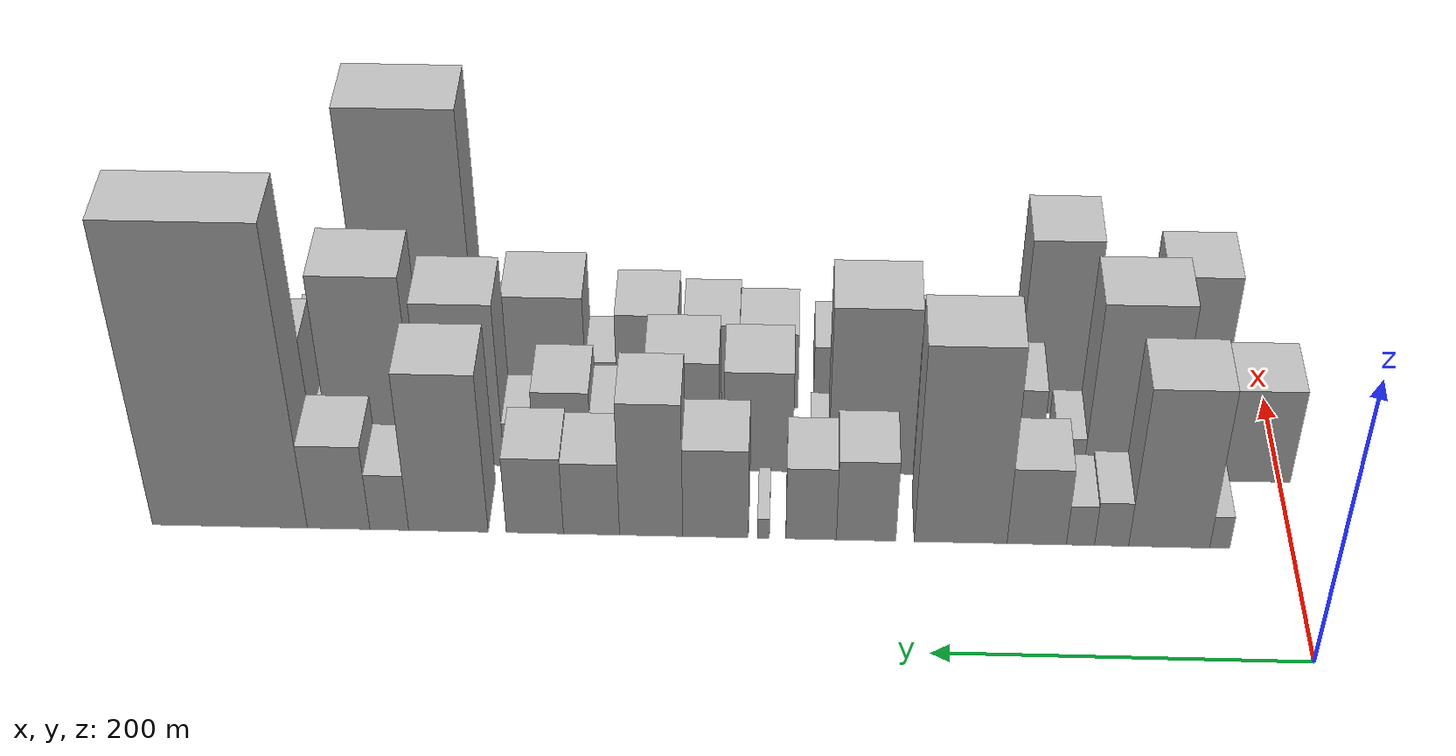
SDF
<sdf version="1.6">
 <world name="default">
  <model name="building_19">
   <static>1</static>
   <pose>100.0000 39.5540 0 0.000000 0.000000 0.000000</pose>
   <link name="link">
    <pose>0 0 12.00 0 0 0</pose>
    <collision name="collision"><geometry><box><size>40.0000 10.8943 24.0000</size></box></geometry></collision>
    <visual name="visual">
     <cast_shadows>0</cast_shadows>
     <geometry><box><size>40.0000 10.8943 24.0000</size></box></geometry>
     <material>
      <script>
       <uri>model://HANNAS_wall/materials/scripts</uri>
       <uri>model://HANNAS_wall/materials/textures</uri>
       <name>vrc/HANNAS_wall</name>
      </script>
     </material>
    </visual>
   </link>
  </model>
  <model name="building_20">
   <static>1</static>
   <pose>100.0000 67.0871 0 0.000000 0.000000 0.000000</pose>
   <link name="link">
    <pose>0 0 58.50 0 0 0</pose>
    <collision name="collision"><geometry><box><size>40.0000 44.1720 117.0000</size></box></geometry></collision>
    <visual name="visual">
     <cast_shadows>0</cast_shadows>
     <geometry><box><size>40.0000 44.1720 117.0000</size></box></geometry>
     <material>
      <script>
       <uri>model://HANNAS_wall/materials/scripts</uri>
       <uri>model://HANNAS_wall/materials/textures</uri>
       <name>vrc/HANNAS_wall</name>
      </script>
     </material>
    </visual>
   </link>
  </model>
  <model name="building_21">
   <static>1</static>
   <pose>100.0000 98.4633 0 0.000000 0.000000 0.000000</pose>
   <link name="link">
    <pose>0 0 16.50 0 0 0</pose>
    <collision name="collision"><geometry><box><size>40.0000 18.5803 33.0000</size></box></geometry></collision>
    <visual name="visual">
     <cast_shadows>0</cast_shadows>
     <geometry><box><size>40.0000 18.5803 33.0000</size></box></geometry>
     <material>
      <script>
       <uri>model://HANNAS_wall/materials/scripts</uri>
       <uri>model://HANNAS_wall/materials/textures</uri>
       <name>vrc/HANNAS_wall</name>
      </script>
     </material>
    </visual>
   </link>
  </model>
  <model name="building_22">
   <static>1</static>
   <pose>100.0000 115.4284 0 0.000000 0.000000 0.000000</pose>
   <link name="link">
    <pose>0 0 15.00 0 0 0</pose>
    <collision name="collision"><geometry><box><size>40.0000 15.3501 30.0000</size></box></geometry></collision>
    <visual name="visual">
     <cast_shadows>0</cast_shadows>
     <geometry><box><size>40.0000 15.3501 30.0000</size></box></geometry>
     <material>
      <script>
       <uri>model://HANNAS_wall/materials/scripts</uri>
       <uri>model://HANNAS_wall/materials/textures</uri>
       <name>vrc/HANNAS_wall</name>
      </script>
     </material>
    </visual>
   </link>
  </model>
  <model name="building_23">
   <static>1</static>
   <pose>100.0000 139.3123 0 0.000000 0.000000 0.000000</pose>
   <link name="link">
    <pose>0 0 28.50 0 0 0</pose>
    <collision name="collision"><geometry><box><size>40.0000 32.4177 57.0000</size></box></geometry></collision>
    <visual name="visual">
     <cast_shadows>0</cast_shadows>
     <geometry><box><size>40.0000 32.4177 57.0000</size></box></geometry>
     <material>
      <script>
       <uri>model://HANNAS_wall/materials/scripts</uri>
       <uri>model://HANNAS_wall/materials/textures</uri>
       <name>vrc/HANNAS_wall</name>
      </script>
     </material>
    </visual>
   </link>
  </model>
  <model name="building_24">
   <static>1</static>
   <pose>100.0000 180.9041 0 0.000000 0.000000 0.000000</pose>
   <link name="link">
    <pose>0 0 72.00 0 0 0</pose>
    <collision name="collision"><geometry><box><size>40.0000 50.7659 144.0000</size></box></geometry></collision>
    <visual name="visual">
     <cast_shadows>0</cast_shadows>
     <geometry><box><size>40.0000 50.7659 144.0000</size></box></geometry>
     <material>
      <script>
       <uri>model://HANNAS_wall/materials/scripts</uri>
       <uri>model://HANNAS_wall/materials/textures</uri>
       <name>vrc/HANNAS_wall</name>
      </script>
     </material>
    </visual>
   </link>
  </model>
  <model name="building_25">
   <static>1</static>
   <pose>100.0000 232.5861 0 0.000000 0.000000 0.000000</pose>
   <link name="link">
    <pose>0 0 30.00 0 0 0</pose>
    <collision name="collision"><geometry><box><size>40.0000 32.5981 60.0000</size></box></geometry></collision>
    <visual name="visual">
     <cast_shadows>0</cast_shadows>
     <geometry><box><size>40.0000 32.5981 60.0000</size></box></geometry>
     <material>
      <script>
       <uri>model://HANNAS_wall/materials/scripts</uri>
       <uri>model://HANNAS_wall/materials/textures</uri>
       <name>vrc/HANNAS_wall</name>
      </script>
     </material>
    </visual>
   </link>
  </model>
  <model name="building_26">
   <static>1</static>
   <pose>100.0000 262.7361 0 0.000000 0.000000 0.000000</pose>
   <link name="link">
    <pose>0 0 27.00 0 0 0</pose>
    <collision name="collision"><geometry><box><size>40.0000 27.7021 54.0000</size></box></geometry></collision>
    <visual name="visual">
     <cast_shadows>0</cast_shadows>
     <geometry><box><size>40.0000 27.7021 54.0000</size></box></geometry>
     <material>
      <script>
       <uri>model://HANNAS_wall/materials/scripts</uri>
       <uri>model://HANNAS_wall/materials/textures</uri>
       <name>vrc/HANNAS_wall</name>
      </script>
     </material>
    </visual>
   </link>
  </model>
  <model name="building_27">
   <static>1</static>
   <pose>100.0000 288.8583 0 0.000000 0.000000 0.000000</pose>
   <link name="link">
    <pose>0 0 7.50 0 0 0</pose>
    <collision name="collision"><geometry><box><size>40.0000 6.5422 15.0000</size></box></geometry></collision>
    <visual name="visual">
     <cast_shadows>0</cast_shadows>
     <geometry><box><size>40.0000 6.5422 15.0000</size></box></geometry>
     <material>
      <script>
       <uri>model://HANNAS_wall/materials/scripts</uri>
       <uri>model://HANNAS_wall/materials/textures</uri>
       <name>vrc/HANNAS_wall</name>
      </script>
     </material>
    </visual>
   </link>
  </model>
  <model name="building_28">
   <static>1</static>
   <pose>100.0000 315.1019 0 0.000000 0.000000 0.000000</pose>
   <link name="link">
    <pose>0 0 33.00 0 0 0</pose>
    <collision name="collision"><geometry><box><size>40.0000 35.9450 66.0000</size></box></geometry></collision>
    <visual name="visual">
     <cast_shadows>0</cast_shadows>
     <geometry><box><size>40.0000 35.9450 66.0000</size></box></geometry>
     <material>
      <script>
       <uri>model://HANNAS_wall/materials/scripts</uri>
       <uri>model://HANNAS_wall/materials/textures</uri>
       <name>vrc/HANNAS_wall</name>
      </script>
     </material>
    </visual>
   </link>
  </model>
  <model name="building_29">
   <static>1</static>
   <pose>100.0000 350.4758 0 0.000000 0.000000 0.000000</pose>
   <link name="link">
    <pose>0 0 49.50 0 0 0</pose>
    <collision name="collision"><geometry><box><size>40.0000 34.8028 99.0000</size></box></geometry></collision>
    <visual name="visual">
     <cast_shadows>0</cast_shadows>
     <geometry><box><size>40.0000 34.8028 99.0000</size></box></geometry>
     <material>
      <script>
       <uri>model://HANNAS_wall/materials/scripts</uri>
       <uri>model://HANNAS_wall/materials/textures</uri>
       <name>vrc/HANNAS_wall</name>
      </script>
     </material>
    </visual>
   </link>
  </model>
  <model name="building_30">
   <static>1</static>
   <pose>100.0000 383.3296 0 0.000000 0.000000 0.000000</pose>
   <link name="link">
    <pose>0 0 27.00 0 0 0</pose>
    <collision name="collision"><geometry><box><size>40.0000 30.9048 54.0000</size></box></geometry></collision>
    <visual name="visual">
     <cast_shadows>0</cast_shadows>
     <geometry><box><size>40.0000 30.9048 54.0000</size></box></geometry>
     <material>
      <script>
       <uri>model://HANNAS_wall/materials/scripts</uri>
       <uri>model://HANNAS_wall/materials/textures</uri>
       <name>vrc/HANNAS_wall</name>
      </script>
     </material>
    </visual>
   </link>
  </model>
  <model name="building_31">
   <static>1</static>
   <pose>100.0000 414.5140 0 0.000000 0.000000 0.000000</pose>
   <link name="link">
    <pose>0 0 28.50 0 0 0</pose>
    <collision name="collision"><geometry><box><size>40.0000 31.4638 57.0000</size></box></geometry></collision>
    <visual name="visual">
     <cast_shadows>0</cast_shadows>
     <geometry><box><size>40.0000 31.4638 57.0000</size></box></geometry>
     <material>
      <script>
       <uri>model://HANNAS_wall/materials/scripts</uri>
       <uri>model://HANNAS_wall/materials/textures</uri>
       <name>vrc/HANNAS_wall</name>
      </script>
     </material>
    </visual>
   </link>
  </model>
  <model name="building_32">
   <static>1</static>
   <pose>100.0000 462.1769 0 0.000000 0.000000 0.000000</pose>
   <link name="link">
    <pose>0 0 58.50 0 0 0</pose>
    <collision name="collision"><geometry><box><size>40.0000 43.8621 117.0000</size></box></geometry></collision>
    <visual name="visual">
     <cast_shadows>0</cast_shadows>
     <geometry><box><size>40.0000 43.8621 117.0000</size></box></geometry>
     <material>
      <script>
       <uri>model://HANNAS_wall/materials/scripts</uri>
       <uri>model://HANNAS_wall/materials/textures</uri>
       <name>vrc/HANNAS_wall</name>
      </script>
     </material>
    </visual>
   </link>
  </model>
  <model name="building_33">
   <static>1</static>
   <pose>100.0000 494.8124 0 0.000000 0.000000 0.000000</pose>
   <link name="link">
    <pose>0 0 21.00 0 0 0</pose>
    <collision name="collision"><geometry><box><size>40.0000 21.4090 42.0000</size></box></geometry></collision>
    <visual name="visual">
     <cast_shadows>0</cast_shadows>
     <geometry><box><size>40.0000 21.4090 42.0000</size></box></geometry>
     <material>
      <script>
       <uri>model://HANNAS_wall/materials/scripts</uri>
       <uri>model://HANNAS_wall/materials/textures</uri>
       <name>vrc/HANNAS_wall</name>
      </script>
     </material>
    </visual>
   </link>
  </model>
  <model name="building_34">
   <static>1</static>
   <pose>100.0000 522.8104 0 0.000000 0.000000 0.000000</pose>
   <link name="link">
    <pose>0 0 31.50 0 0 0</pose>
    <collision name="collision"><geometry><box><size>40.0000 34.5869 63.0000</size></box></geometry></collision>
    <visual name="visual">
     <cast_shadows>0</cast_shadows>
     <geometry><box><size>40.0000 34.5869 63.0000</size></box></geometry>
     <material>
      <script>
       <uri>model://HANNAS_wall/materials/scripts</uri>
       <uri>model://HANNAS_wall/materials/textures</uri>
       <name>vrc/HANNAS_wall</name>
      </script>
     </material>
    </visual>
   </link>
  </model>
  <model name="building_35">
   <static>1</static>
   <pose>100.0000 582.9870 0 0.000000 0.000000 0.000000</pose>
   <link name="link">
    <pose>0 0 108.00 0 0 0</pose>
    <collision name="collision"><geometry><box><size>40.0000 85.7662 216.0000</size></box></geometry></collision>
    <visual name="visual">
     <cast_shadows>0</cast_shadows>
     <geometry><box><size>40.0000 85.7662 216.0000</size></box></geometry>
     <material>
      <script>
       <uri>model://HANNAS_wall/materials/scripts</uri>
       <uri>model://HANNAS_wall/materials/textures</uri>
       <name>vrc/HANNAS_wall</name>
      </script>
     </material>
    </visual>
   </link>
  </model>
  <model name="building_52">
   <static>1</static>
   <pose>152.0000 14.0588 0 0.000000 0.000000 0.000000</pose>
   <link name="link">
    <pose>0 0 34.50 0 0 0</pose>
    <collision name="collision"><geometry><box><size>40.0000 40.2531 69.0000</size></box></geometry></collision>
    <visual name="visual">
     <cast_shadows>0</cast_shadows>
     <geometry><box><size>40.0000 40.2531 69.0000</size></box></geometry>
     <material>
      <script>
       <uri>model://HANNAS_wall/materials/scripts</uri>
       <uri>model://HANNAS_wall/materials/textures</uri>
       <name>vrc/HANNAS_wall</name>
      </script>
     </material>
    </visual>
   </link>
  </model>
  <model name="building_53">
   <static>1</static>
   <pose>152.0000 51.0112 0 0.000000 0.000000 0.000000</pose>
   <link name="link">
    <pose>0 0 18.00 0 0 0</pose>
    <collision name="collision"><geometry><box><size>40.0000 19.6517 36.0000</size></box></geometry></collision>
    <visual name="visual">
     <cast_shadows>0</cast_shadows>
     <geometry><box><size>40.0000 19.6517 36.0000</size></box></geometry>
     <material>
      <script>
       <uri>model://HANNAS_wall/materials/scripts</uri>
       <uri>model://HANNAS_wall/materials/textures</uri>
       <name>vrc/HANNAS_wall</name>
      </script>
     </material>
    </visual>
   </link>
  </model>
  <model name="building_54">
   <static>1</static>
   <pose>152.0000 85.5812 0 0.000000 0.000000 0.000000</pose>
   <link name="link">
    <pose>0 0 64.50 0 0 0</pose>
    <collision name="collision"><geometry><box><size>40.0000 49.4884 129.0000</size></box></geometry></collision>
    <visual name="visual">
     <cast_shadows>0</cast_shadows>
     <geometry><box><size>40.0000 49.4884 129.0000</size></box></geometry>
     <material>
      <script>
       <uri>model://HANNAS_wall/materials/scripts</uri>
       <uri>model://HANNAS_wall/materials/textures</uri>
       <name>vrc/HANNAS_wall</name>
      </script>
     </material>
    </visual>
   </link>
  </model>
  <model name="building_55">
   <static>1</static>
   <pose>152.0000 118.5009 0 0.000000 0.000000 0.000000</pose>
   <link name="link">
    <pose>0 0 15.00 0 0 0</pose>
    <collision name="collision"><geometry><box><size>40.0000 16.3510 30.0000</size></box></geometry></collision>
    <visual name="visual">
     <cast_shadows>0</cast_shadows>
     <geometry><box><size>40.0000 16.3510 30.0000</size></box></geometry>
     <material>
      <script>
       <uri>model://HANNAS_wall/materials/scripts</uri>
       <uri>model://HANNAS_wall/materials/textures</uri>
       <name>vrc/HANNAS_wall</name>
      </script>
     </material>
    </visual>
   </link>
  </model>
  <model name="building_56">
   <static>1</static>
   <pose>152.0000 153.3070 0 0.000000 0.000000 0.000000</pose>
   <link name="link">
    <pose>0 0 33.00 0 0 0</pose>
    <collision name="collision"><geometry><box><size>40.0000 37.2611 66.0000</size></box></geometry></collision>
    <visual name="visual">
     <cast_shadows>0</cast_shadows>
     <geometry><box><size>40.0000 37.2611 66.0000</size></box></geometry>
     <material>
      <script>
       <uri>model://HANNAS_wall/materials/scripts</uri>
       <uri>model://HANNAS_wall/materials/textures</uri>
       <name>vrc/HANNAS_wall</name>
      </script>
     </material>
    </visual>
   </link>
  </model>
  <model name="building_57">
   <static>1</static>
   <pose>152.0000 188.7790 0 0.000000 0.000000 0.000000</pose>
   <link name="link">
    <pose>0 0 49.50 0 0 0</pose>
    <collision name="collision"><geometry><box><size>40.0000 33.6830 99.0000</size></box></geometry></collision>
    <visual name="visual">
     <cast_shadows>0</cast_shadows>
     <geometry><box><size>40.0000 33.6830 99.0000</size></box></geometry>
     <material>
      <script>
       <uri>model://HANNAS_wall/materials/scripts</uri>
       <uri>model://HANNAS_wall/materials/textures</uri>
       <name>vrc/HANNAS_wall</name>
      </script>
     </material>
    </visual>
   </link>
  </model>
  <model name="building_58">
   <static>1</static>
   <pose>152.0000 229.4801 0 0.000000 0.000000 0.000000</pose>
   <link name="link">
    <pose>0 0 61.50 0 0 0</pose>
    <collision name="collision"><geometry><box><size>40.0000 47.7192 123.0000</size></box></geometry></collision>
    <visual name="visual">
     <cast_shadows>0</cast_shadows>
     <geometry><box><size>40.0000 47.7192 123.0000</size></box></geometry>
     <material>
      <script>
       <uri>model://HANNAS_wall/materials/scripts</uri>
       <uri>model://HANNAS_wall/materials/textures</uri>
       <name>vrc/HANNAS_wall</name>
      </script>
     </material>
    </visual>
   </link>
  </model>
  <model name="building_59">
   <static>1</static>
   <pose>152.0000 258.4215 0 0.000000 0.000000 0.000000</pose>
   <link name="link">
    <pose>0 0 12.00 0 0 0</pose>
    <collision name="collision"><geometry><box><size>40.0000 10.1636 24.0000</size></box></geometry></collision>
    <visual name="visual">
     <cast_shadows>0</cast_shadows>
     <geometry><box><size>40.0000 10.1636 24.0000</size></box></geometry>
     <material>
      <script>
       <uri>model://HANNAS_wall/materials/scripts</uri>
       <uri>model://HANNAS_wall/materials/textures</uri>
       <name>vrc/HANNAS_wall</name>
      </script>
     </material>
    </visual>
   </link>
  </model>
  <model name="building_60">
   <static>1</static>
   <pose>152.0000 292.6820 0 0.000000 0.000000 0.000000</pose>
   <link name="link">
    <pose>0 0 37.50 0 0 0</pose>
    <collision name="collision"><geometry><box><size>40.0000 38.3574 75.0000</size></box></geometry></collision>
    <visual name="visual">
     <cast_shadows>0</cast_shadows>
     <geometry><box><size>40.0000 38.3574 75.0000</size></box></geometry>
     <material>
      <script>
       <uri>model://HANNAS_wall/materials/scripts</uri>
       <uri>model://HANNAS_wall/materials/textures</uri>
       <name>vrc/HANNAS_wall</name>
      </script>
     </material>
    </visual>
   </link>
  </model>
  <model name="building_61">
   <static>1</static>
   <pose>152.0000 335.2632 0 0.000000 0.000000 0.000000</pose>
   <link name="link">
    <pose>0 0 40.50 0 0 0</pose>
    <collision name="collision"><geometry><box><size>40.0000 40.8051 81.0000</size></box></geometry></collision>
    <visual name="visual">
     <cast_shadows>0</cast_shadows>
     <geometry><box><size>40.0000 40.8051 81.0000</size></box></geometry>
     <material>
      <script>
       <uri>model://HANNAS_wall/materials/scripts</uri>
       <uri>model://HANNAS_wall/materials/textures</uri>
       <name>vrc/HANNAS_wall</name>
      </script>
     </material>
    </visual>
   </link>
  </model>
  <model name="building_62">
   <static>1</static>
   <pose>152.0000 359.3220 0 0.000000 0.000000 0.000000</pose>
   <link name="link">
    <pose>0 0 7.50 0 0 0</pose>
    <collision name="collision"><geometry><box><size>40.0000 7.3123 15.0000</size></box></geometry></collision>
    <visual name="visual">
     <cast_shadows>0</cast_shadows>
     <geometry><box><size>40.0000 7.3123 15.0000</size></box></geometry>
     <material>
      <script>
       <uri>model://HANNAS_wall/materials/scripts</uri>
       <uri>model://HANNAS_wall/materials/textures</uri>
       <name>vrc/HANNAS_wall</name>
      </script>
     </material>
    </visual>
   </link>
  </model>
  <model name="building_63">
   <static>1</static>
   <pose>152.0000 374.9306 0 0.000000 0.000000 0.000000</pose>
   <link name="link">
    <pose>0 0 21.00 0 0 0</pose>
    <collision name="collision"><geometry><box><size>40.0000 23.9050 42.0000</size></box></geometry></collision>
    <visual name="visual">
     <cast_shadows>0</cast_shadows>
     <geometry><box><size>40.0000 23.9050 42.0000</size></box></geometry>
     <material>
      <script>
       <uri>model://HANNAS_wall/materials/scripts</uri>
       <uri>model://HANNAS_wall/materials/textures</uri>
       <name>vrc/HANNAS_wall</name>
      </script>
     </material>
    </visual>
   </link>
  </model>
  <model name="building_64">
   <static>1</static>
   <pose>152.0000 402.9809 0 0.000000 0.000000 0.000000</pose>
   <link name="link">
    <pose>0 0 28.50 0 0 0</pose>
    <collision name="collision"><geometry><box><size>40.0000 32.1955 57.0000</size></box></geometry></collision>
    <visual name="visual">
     <cast_shadows>0</cast_shadows>
     <geometry><box><size>40.0000 32.1955 57.0000</size></box></geometry>
     <material>
      <script>
       <uri>model://HANNAS_wall/materials/scripts</uri>
       <uri>model://HANNAS_wall/materials/textures</uri>
       <name>vrc/HANNAS_wall</name>
      </script>
     </material>
    </visual>
   </link>
  </model>
  <model name="building_65">
   <static>1</static>
   <pose>152.0000 427.7514 0 0.000000 0.000000 0.000000</pose>
   <link name="link">
    <pose>0 0 16.50 0 0 0</pose>
    <collision name="collision"><geometry><box><size>40.0000 17.3454 33.0000</size></box></geometry></collision>
    <visual name="visual">
     <cast_shadows>0</cast_shadows>
     <geometry><box><size>40.0000 17.3454 33.0000</size></box></geometry>
     <material>
      <script>
       <uri>model://HANNAS_wall/materials/scripts</uri>
       <uri>model://HANNAS_wall/materials/textures</uri>
       <name>vrc/HANNAS_wall</name>
      </script>
     </material>
    </visual>
   </link>
  </model>
  <model name="building_66">
   <static>1</static>
   <pose>152.0000 458.7340 0 0.000000 0.000000 0.000000</pose>
   <link name="link">
    <pose>0 0 60.00 0 0 0</pose>
    <collision name="collision"><geometry><box><size>40.0000 44.6198 120.0000</size></box></geometry></collision>
    <visual name="visual">
     <cast_shadows>0</cast_shadows>
     <geometry><box><size>40.0000 44.6198 120.0000</size></box></geometry>
     <material>
      <script>
       <uri>model://HANNAS_wall/materials/scripts</uri>
       <uri>model://HANNAS_wall/materials/textures</uri>
       <name>vrc/HANNAS_wall</name>
      </script>
     </material>
    </visual>
   </link>
  </model>
  <model name="building_67">
   <static>1</static>
   <pose>152.0000 509.8177 0 0.000000 0.000000 0.000000</pose>
   <link name="link">
    <pose>0 0 69.00 0 0 0</pose>
    <collision name="collision"><geometry><box><size>40.0000 49.5475 138.0000</size></box></geometry></collision>
    <visual name="visual">
     <cast_shadows>0</cast_shadows>
     <geometry><box><size>40.0000 49.5475 138.0000</size></box></geometry>
     <material>
      <script>
       <uri>model://HANNAS_wall/materials/scripts</uri>
       <uri>model://HANNAS_wall/materials/textures</uri>
       <name>vrc/HANNAS_wall</name>
      </script>
     </material>
    </visual>
   </link>
  </model>
  <model name="building_68">
   <static>1</static>
   <pose>152.0000 539.7124 0 0.000000 0.000000 0.000000</pose>
   <link name="link">
    <pose>0 0 12.00 0 0 0</pose>
    <collision name="collision"><geometry><box><size>40.0000 10.2420 24.0000</size></box></geometry></collision>
    <visual name="visual">
     <cast_shadows>0</cast_shadows>
     <geometry><box><size>40.0000 10.2420 24.0000</size></box></geometry>
     <material>
      <script>
       <uri>model://HANNAS_wall/materials/scripts</uri>
       <uri>model://HANNAS_wall/materials/textures</uri>
       <name>vrc/HANNAS_wall</name>
      </script>
     </material>
    </visual>
   </link>
  </model>
  <model name="building_69">
   <static>1</static>
   <pose>152.0000 568.9970 0 0.000000 0.000000 0.000000</pose>
   <link name="link">
    <pose>0 0 43.50 0 0 0</pose>
    <collision name="collision"><geometry><box><size>40.0000 48.3274 87.0000</size></box></geometry></collision>
    <visual name="visual">
     <cast_shadows>0</cast_shadows>
     <geometry><box><size>40.0000 48.3274 87.0000</size></box></geometry>
     <material>
      <script>
       <uri>model://HANNAS_wall/materials/scripts</uri>
       <uri>model://HANNAS_wall/materials/textures</uri>
       <name>vrc/HANNAS_wall</name>
      </script>
     </material>
    </visual>
   </link>
  </model>
  <model name="building_86">
   <static>1</static>
   <pose>204.0000 47.8204 0 0.000000 0.000000 0.000000</pose>
   <link name="link">
    <pose>0 0 52.50 0 0 0</pose>
    <collision name="collision"><geometry><box><size>40.0000 41.2436 105.0000</size></box></geometry></collision>
    <visual name="visual">
     <cast_shadows>0</cast_shadows>
     <geometry><box><size>40.0000 41.2436 105.0000</size></box></geometry>
     <material>
      <script>
       <uri>model://HANNAS_wall/materials/scripts</uri>
       <uri>model://HANNAS_wall/materials/textures</uri>
       <name>vrc/HANNAS_wall</name>
      </script>
     </material>
    </visual>
   </link>
  </model>
  <model name="building_87">
   <static>1</static>
   <pose>204.0000 83.9862 0 0.000000 0.000000 0.000000</pose>
   <link name="link">
    <pose>0 0 30.00 0 0 0</pose>
    <collision name="collision"><geometry><box><size>40.0000 31.0881 60.0000</size></box></geometry></collision>
    <visual name="visual">
     <cast_shadows>0</cast_shadows>
     <geometry><box><size>40.0000 31.0881 60.0000</size></box></geometry>
     <material>
      <script>
       <uri>model://HANNAS_wall/materials/scripts</uri>
       <uri>model://HANNAS_wall/materials/textures</uri>
       <name>vrc/HANNAS_wall</name>
      </script>
     </material>
    </visual>
   </link>
  </model>
  <model name="building_88">
   <static>1</static>
   <pose>204.0000 125.2465 0 0.000000 0.000000 0.000000</pose>
   <link name="link">
    <pose>0 0 64.50 0 0 0</pose>
    <collision name="collision"><geometry><box><size>40.0000 39.4324 129.0000</size></box></geometry></collision>
    <visual name="visual">
     <cast_shadows>0</cast_shadows>
     <geometry><box><size>40.0000 39.4324 129.0000</size></box></geometry>
     <material>
      <script>
       <uri>model://HANNAS_wall/materials/scripts</uri>
       <uri>model://HANNAS_wall/materials/textures</uri>
       <name>vrc/HANNAS_wall</name>
      </script>
     </material>
    </visual>
   </link>
  </model>
  <model name="building_89">
   <static>1</static>
   <pose>204.0000 156.4666 0 0.000000 0.000000 0.000000</pose>
   <link name="link">
    <pose>0 0 21.00 0 0 0</pose>
    <collision name="collision"><geometry><box><size>40.0000 23.0079 42.0000</size></box></geometry></collision>
    <visual name="visual">
     <cast_shadows>0</cast_shadows>
     <geometry><box><size>40.0000 23.0079 42.0000</size></box></geometry>
     <material>
      <script>
       <uri>model://HANNAS_wall/materials/scripts</uri>
       <uri>model://HANNAS_wall/materials/textures</uri>
       <name>vrc/HANNAS_wall</name>
      </script>
     </material>
    </visual>
   </link>
  </model>
  <model name="building_90">
   <static>1</static>
   <pose>204.0000 187.8740 0 0.000000 0.000000 0.000000</pose>
   <link name="link">
    <pose>0 0 27.00 0 0 0</pose>
    <collision name="collision"><geometry><box><size>40.0000 29.8069 54.0000</size></box></geometry></collision>
    <visual name="visual">
     <cast_shadows>0</cast_shadows>
     <geometry><box><size>40.0000 29.8069 54.0000</size></box></geometry>
     <material>
      <script>
       <uri>model://HANNAS_wall/materials/scripts</uri>
       <uri>model://HANNAS_wall/materials/textures</uri>
       <name>vrc/HANNAS_wall</name>
      </script>
     </material>
    </visual>
   </link>
  </model>
  <model name="building_91">
   <static>1</static>
   <pose>204.0000 221.5213 0 0.000000 0.000000 0.000000</pose>
   <link name="link">
    <pose>0 0 22.50 0 0 0</pose>
    <collision name="collision"><geometry><box><size>40.0000 23.4877 45.0000</size></box></geometry></collision>
    <visual name="visual">
     <cast_shadows>0</cast_shadows>
     <geometry><box><size>40.0000 23.4877 45.0000</size></box></geometry>
     <material>
      <script>
       <uri>model://HANNAS_wall/materials/scripts</uri>
       <uri>model://HANNAS_wall/materials/textures</uri>
       <name>vrc/HANNAS_wall</name>
      </script>
     </material>
    </visual>
   </link>
  </model>
  <model name="building_92">
   <static>1</static>
   <pose>204.0000 249.6583 0 0.000000 0.000000 0.000000</pose>
   <link name="link">
    <pose>0 0 24.00 0 0 0</pose>
    <collision name="collision"><geometry><box><size>40.0000 24.7864 48.0000</size></box></geometry></collision>
    <visual name="visual">
     <cast_shadows>0</cast_shadows>
     <geometry><box><size>40.0000 24.7864 48.0000</size></box></geometry>
     <material>
      <script>
       <uri>model://HANNAS_wall/materials/scripts</uri>
       <uri>model://HANNAS_wall/materials/textures</uri>
       <name>vrc/HANNAS_wall</name>
      </script>
     </material>
    </visual>
   </link>
  </model>
  <model name="building_93">
   <static>1</static>
   <pose>204.0000 287.8796 0 0.000000 0.000000 0.000000</pose>
   <link name="link">
    <pose>0 0 28.50 0 0 0</pose>
    <collision name="collision"><geometry><box><size>40.0000 33.6562 57.0000</size></box></geometry></collision>
    <visual name="visual">
     <cast_shadows>0</cast_shadows>
     <geometry><box><size>40.0000 33.6562 57.0000</size></box></geometry>
     <material>
      <script>
       <uri>model://HANNAS_wall/materials/scripts</uri>
       <uri>model://HANNAS_wall/materials/textures</uri>
       <name>vrc/HANNAS_wall</name>
      </script>
     </material>
    </visual>
   </link>
  </model>
  <model name="building_94">
   <static>1</static>
   <pose>204.0000 320.6894 0 0.000000 0.000000 0.000000</pose>
   <link name="link">
    <pose>0 0 31.50 0 0 0</pose>
    <collision name="collision"><geometry><box><size>40.0000 31.9633 63.0000</size></box></geometry></collision>
    <visual name="visual">
     <cast_shadows>0</cast_shadows>
     <geometry><box><size>40.0000 31.9633 63.0000</size></box></geometry>
     <material>
      <script>
       <uri>model://HANNAS_wall/materials/scripts</uri>
       <uri>model://HANNAS_wall/materials/textures</uri>
       <name>vrc/HANNAS_wall</name>
      </script>
     </material>
    </visual>
   </link>
  </model>
  <model name="building_95">
   <static>1</static>
   <pose>204.0000 357.6602 0 0.000000 0.000000 0.000000</pose>
   <link name="link">
    <pose>0 0 34.50 0 0 0</pose>
    <collision name="collision"><geometry><box><size>40.0000 35.9782 69.0000</size></box></geometry></collision>
    <visual name="visual">
     <cast_shadows>0</cast_shadows>
     <geometry><box><size>40.0000 35.9782 69.0000</size></box></geometry>
     <material>
      <script>
       <uri>model://HANNAS_wall/materials/scripts</uri>
       <uri>model://HANNAS_wall/materials/textures</uri>
       <name>vrc/HANNAS_wall</name>
      </script>
     </material>
    </visual>
   </link>
  </model>
  <model name="building_96">
   <static>1</static>
   <pose>204.0000 384.5361 0 0.000000 0.000000 0.000000</pose>
   <link name="link">
    <pose>0 0 16.50 0 0 0</pose>
    <collision name="collision"><geometry><box><size>40.0000 17.7736 33.0000</size></box></geometry></collision>
    <visual name="visual">
     <cast_shadows>0</cast_shadows>
     <geometry><box><size>40.0000 17.7736 33.0000</size></box></geometry>
     <material>
      <script>
       <uri>model://HANNAS_wall/materials/scripts</uri>
       <uri>model://HANNAS_wall/materials/textures</uri>
       <name>vrc/HANNAS_wall</name>
      </script>
     </material>
    </visual>
   </link>
  </model>
  <model name="building_97">
   <static>1</static>
   <pose>204.0000 416.3985 0 0.000000 0.000000 0.000000</pose>
   <link name="link">
    <pose>0 0 40.50 0 0 0</pose>
    <collision name="collision"><geometry><box><size>40.0000 45.9513 81.0000</size></box></geometry></collision>
    <visual name="visual">
     <cast_shadows>0</cast_shadows>
     <geometry><box><size>40.0000 45.9513 81.0000</size></box></geometry>
     <material>
      <script>
       <uri>model://HANNAS_wall/materials/scripts</uri>
       <uri>model://HANNAS_wall/materials/textures</uri>
       <name>vrc/HANNAS_wall</name>
      </script>
     </material>
    </visual>
   </link>
  </model>
  <model name="building_98">
   <static>1</static>
   <pose>204.0000 447.3022 0 0.000000 0.000000 0.000000</pose>
   <link name="link">
    <pose>0 0 15.00 0 0 0</pose>
    <collision name="collision"><geometry><box><size>40.0000 15.8560 30.0000</size></box></geometry></collision>
    <visual name="visual">
     <cast_shadows>0</cast_shadows>
     <geometry><box><size>40.0000 15.8560 30.0000</size></box></geometry>
     <material>
      <script>
       <uri>model://HANNAS_wall/materials/scripts</uri>
       <uri>model://HANNAS_wall/materials/textures</uri>
       <name>vrc/HANNAS_wall</name>
      </script>
     </material>
    </visual>
   </link>
  </model>
  <model name="building_99">
   <static>1</static>
   <pose>204.0000 487.8655 0 0.000000 0.000000 0.000000</pose>
   <link name="link">
    <pose>0 0 105.00 0 0 0</pose>
    <collision name="collision"><geometry><box><size>40.0000 65.2707 210.0000</size></box></geometry></collision>
    <visual name="visual">
     <cast_shadows>0</cast_shadows>
     <geometry><box><size>40.0000 65.2707 210.0000</size></box></geometry>
     <material>
      <script>
       <uri>model://HANNAS_wall/materials/scripts</uri>
       <uri>model://HANNAS_wall/materials/textures</uri>
       <name>vrc/HANNAS_wall</name>
      </script>
     </material>
    </visual>
   </link>
  </model>
  <model name="building_100">
   <static>1</static>
   <pose>204.0000 523.6966 0 0.000000 0.000000 0.000000</pose>
   <link name="link">
    <pose>0 0 7.50 0 0 0</pose>
    <collision name="collision"><geometry><box><size>40.0000 6.3914 15.0000</size></box></geometry></collision>
    <visual name="visual">
     <cast_shadows>0</cast_shadows>
     <geometry><box><size>40.0000 6.3914 15.0000</size></box></geometry>
     <material>
      <script>
       <uri>model://HANNAS_wall/materials/scripts</uri>
       <uri>model://HANNAS_wall/materials/textures</uri>
       <name>vrc/HANNAS_wall</name>
      </script>
     </material>
    </visual>
   </link>
  </model>
  <model name="building_101">
   <static>1</static>
   <pose>204.0000 548.7817 0 0.000000 0.000000 0.000000</pose>
   <link name="link">
    <pose>0 0 22.50 0 0 0</pose>
    <collision name="collision"><geometry><box><size>40.0000 23.7787 45.0000</size></box></geometry></collision>
    <visual name="visual">
     <cast_shadows>0</cast_shadows>
     <geometry><box><size>40.0000 23.7787 45.0000</size></box></geometry>
     <material>
      <script>
       <uri>model://HANNAS_wall/materials/scripts</uri>
       <uri>model://HANNAS_wall/materials/textures</uri>
       <name>vrc/HANNAS_wall</name>
      </script>
     </material>
    </visual>
   </link>
  </model>
 </world>
</sdf>
